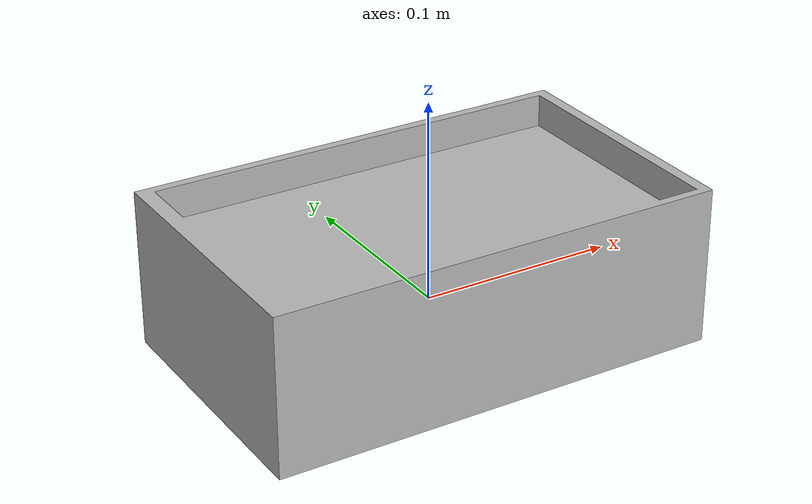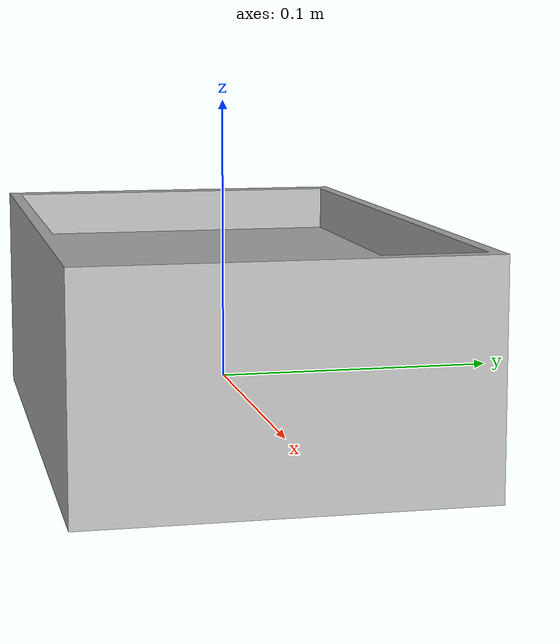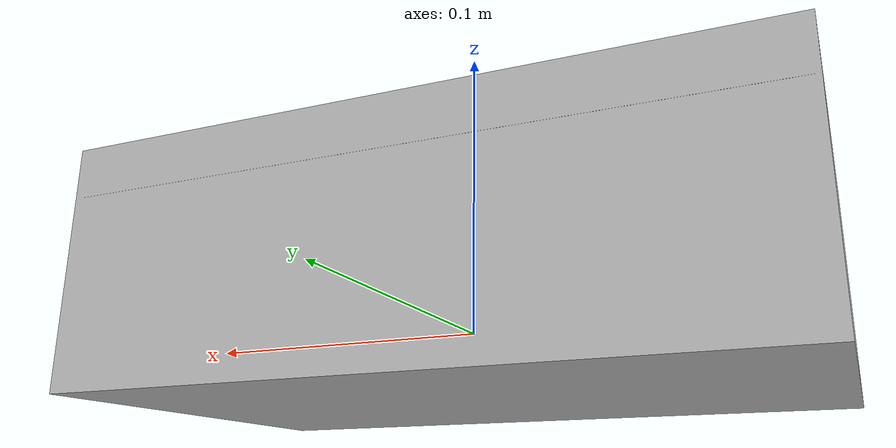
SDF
<sdf version="1.6">
  <model name="flowerpot_110098">
    <static>true</static>
    <link name="link">
      <collision name="collision">
        <geometry>
          <box>
            <size>1 1 1</size>
          </box>
        </geometry>
      </collision>
      <visual name="structure">
        <geometry>
          <mesh>
            <uri>model://flowerpot_110098/meshes/maceta.dae</uri>
            <scale>0.0004 0.0004 0.0004</scale>
          </mesh>
        </geometry>
      </visual>
    </link>
  </model>
</sdf>
